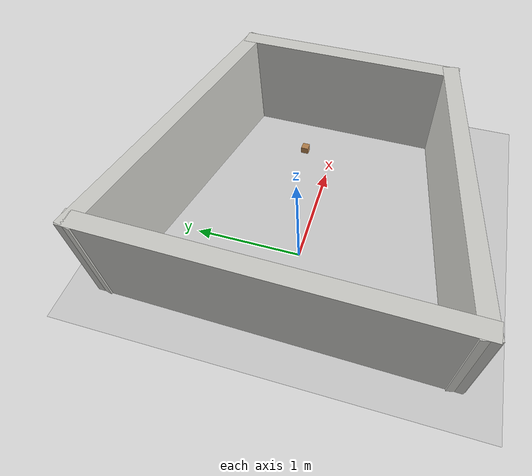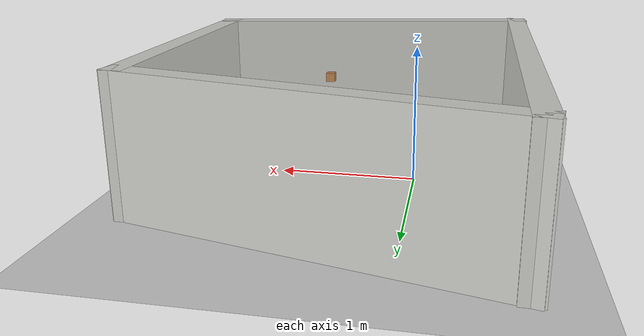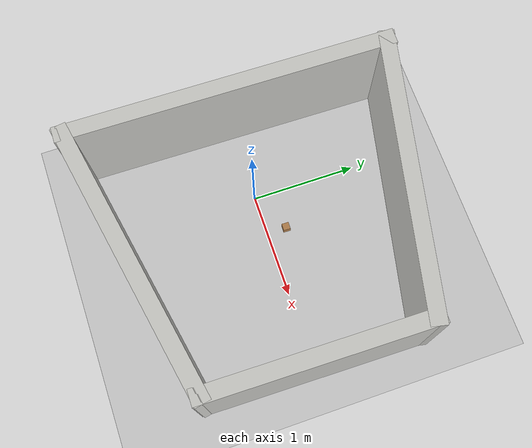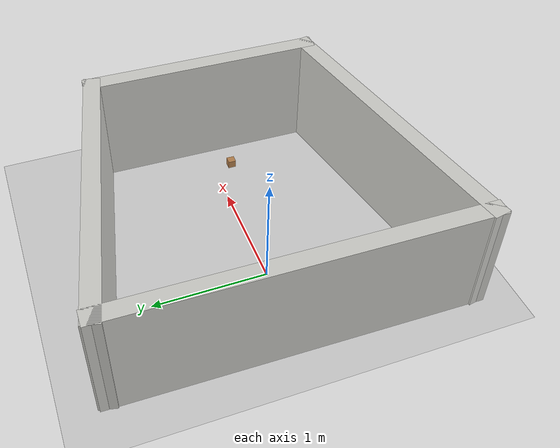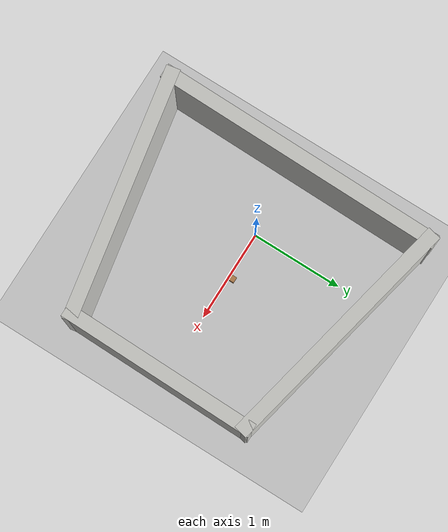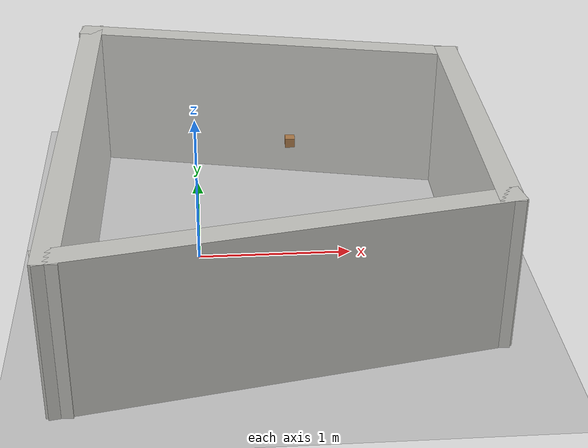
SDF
<sdf version="1.6">
 <world name="default">
  <light name="sun" type="directional">
   <pose>0 0 10 0 -0 0</pose>
   <diffuse>0.8 0.8 0.8 1</diffuse>
   <specular>0.2 0.2 0.2 1</specular>
   <attenuation>
    <range>1000</range>
    <constant>0.9</constant>
    <linear>0.01</linear>
    <quadratic>0.001</quadratic>
   </attenuation>
   <direction>-0.5 0.1 -0.9</direction>
  </light>
  <model name="ground_plane">
   <static>1</static>
   <link name="link">
    <collision name="collision">
     <geometry><plane><normal>0 0 1</normal><size>100 100</size></plane></geometry>
     <surface>
      <contact><collide_bitmask>65535</collide_bitmask></contact>
      <friction><ode><mu>100</mu><mu2>50</mu2></ode></friction>
     </surface>
    </collision>
    <visual name="visual">
     <cast_shadows>0</cast_shadows>
     <geometry><plane><normal>0 0 1</normal><size>100 100</size></plane></geometry>
     <material>
      <script><uri>file://media/materials/scripts/gazebo.material</uri><name>Gazebo/Grey</name></script>
     </material>
    </visual>
   </link>
  </model>
  <gravity>0 0 -9.8</gravity>
  <magnetic_field>6e-06 2.3e-05 -4.2e-05</magnetic_field>
  <atmosphere type="adiabatic"/>
  <physics name="default_physics" default="0" type="ode">
   <max_step_size>0.001</max_step_size>
   <real_time_factor>1</real_time_factor>
   <real_time_update_rate>1000</real_time_update_rate>
  </physics>
  <scene><ambient>0.4 0.4 0.4 1</ambient><background>0.7 0.7 0.7 1</background><shadows>1</shadows></scene>
  <audio><device>default</device></audio>
  <spherical_coordinates>
   <surface_model>EARTH_WGS84</surface_model>
   <latitude_deg>0</latitude_deg>
   <longitude_deg>0</longitude_deg>
   <elevation>0</elevation>
   <heading_deg>0</heading_deg>
  </spherical_coordinates>
  <model name="wood_cube_7_5cm_clone">
   <link name="link">
    <pose>0 0 0.0375 0 -0 0</pose>
    <inertial>
     <mass>0.05249</mass>
     <inertia>
      <ixx>0.000210844</ixx>
      <ixy>0</ixy>
      <ixz>0</ixz>
      <iyy>0.000210844</iyy>
      <iyz>0</iyz>
      <izz>0.000210844</izz>
     </inertia>
    </inertial>
    <collision name="collision">
     <geometry><box><size>0.06 0.06 0.06</size></box></geometry>
     <surface>
      <contact>
       <poissons_ratio>0.347</poissons_ratio>
       <elastic_modulus>8.8e+09</elastic_modulus>
       <ode><kp>100000</kp><kd>100</kd><max_vel>100</max_vel><min_depth>0.001</min_depth></ode>
      </contact>
      <friction>
       <torsional>
        <coefficient>1</coefficient>
        <use_patch_radius>0</use_patch_radius>
        <surface_radius>0.01</surface_radius>
       </torsional>
      </friction>
     </surface>
    </collision>
    <visual name="visual">
     <geometry><box><size>0.06 0.06 0.06</size></box></geometry>
     <material>
      <script><uri>file://media/materials/scripts/gazebo.material</uri><name>Gazebo/Wood</name></script>
     </material>
    </visual>
   </link>
   <pose>0.6 0.1 0.75 0 -0 1.55</pose>
  </model>
  <model name="FetchBox">
   <pose>0.5 0 0 0 -0 1.555</pose>
   <link name="Wall_0">
    <collision name="Wall_0_Collision">
     <geometry><box><size>3.15 0.15 1</size></box></geometry>
     <pose>0 0 0.5 0 -0 0</pose>
    </collision>
    <visual name="Wall_0_Visual">
     <pose>0 0 0.5 0 -0 0</pose>
     <geometry><box><size>3.15 0.15 1</size></box></geometry>
     <material>
      <script><uri>file://media/materials/scripts/gazebo.material</uri><name>Gazebo/CeilingTiled</name></script>
      <ambient>0.760784 0.662745 0.627451 1</ambient>
     </material>
     <meta><layer>0</layer></meta>
    </visual>
    <pose>0 1.25 0 0 -0 0</pose>
   </link>
   <link name="Wall_1">
    <collision name="Wall_1_Collision">
     <geometry><box><size>2.69951 0.15 1</size></box></geometry>
     <pose>0 0 0.5 0 -0 0</pose>
    </collision>
    <visual name="Wall_1_Visual">
     <pose>0 0 0.5 0 -0 0</pose>
     <geometry><box><size>2.69951 0.15 1</size></box></geometry>
     <material>
      <script><uri>file://media/materials/scripts/gazebo.material</uri><name>Gazebo/CeilingTiled</name></script>
      <ambient>0.760784 0.662745 0.627451 1</ambient>
     </material>
     <meta><layer>0</layer></meta>
    </visual>
    <pose>1.25 0 0 0 -0 -1.76819</pose>
   </link>
   <link name="Wall_2">
    <collision name="Wall_2_Collision">
     <geometry><box><size>2.15 0.15 1</size></box></geometry>
     <pose>0 0 0.5 0 -0 0</pose>
    </collision>
    <visual name="Wall_2_Visual">
     <pose>0 0 0.5 0 -0 0</pose>
     <geometry><box><size>2.15 0.15 1</size></box></geometry>
     <material>
      <script><uri>file://media/materials/scripts/gazebo.material</uri><name>Gazebo/CeilingTiled</name></script>
      <ambient>0.760784 0.662745 0.627451 1</ambient>
     </material>
     <meta><layer>0</layer></meta>
    </visual>
    <pose>0 -1.25 0 0 -0 3.14159</pose>
   </link>
   <link name="Wall_3">
    <collision name="Wall_3_Collision">
     <geometry><box><size>2.69951 0.15 1</size></box></geometry>
     <pose>0 0 0.5 0 -0 0</pose>
    </collision>
    <visual name="Wall_3_Visual">
     <pose>0 0 0.5 0 -0 0</pose>
     <geometry><box><size>2.69951 0.15 1</size></box></geometry>
     <material>
      <script><uri>file://media/materials/scripts/gazebo.material</uri><name>Gazebo/CeilingTiled</name></script>
      <ambient>0.760784 0.662745 0.627451 1</ambient>
     </material>
     <meta><layer>0</layer></meta>
    </visual>
    <pose>-1.25 0 0 0 -0 1.76819</pose>
   </link>
   <static>1</static>
  </model>
 </world>
</sdf>
